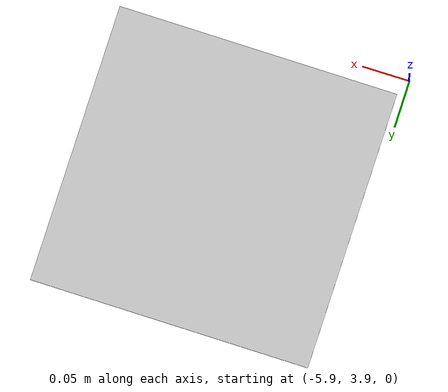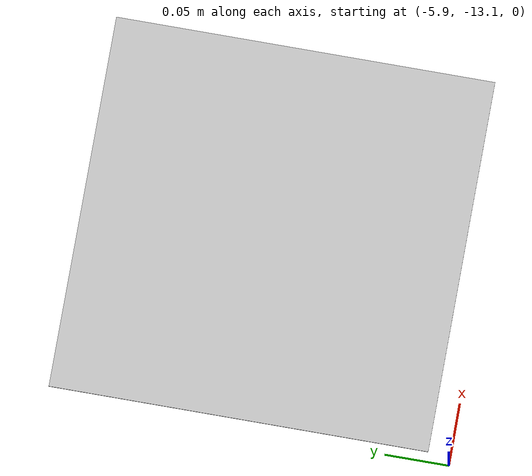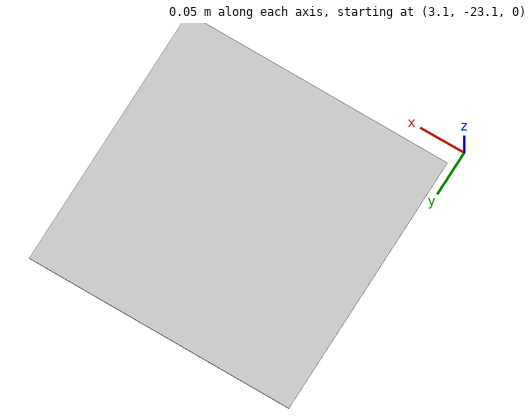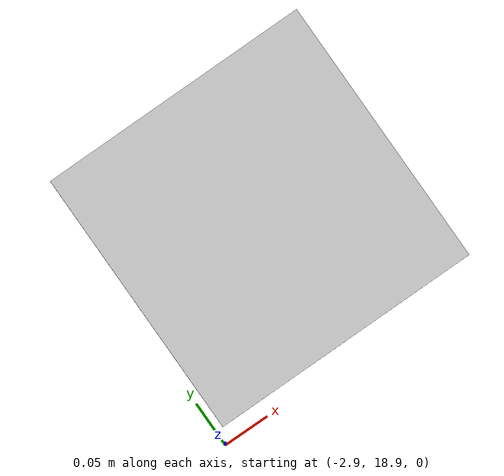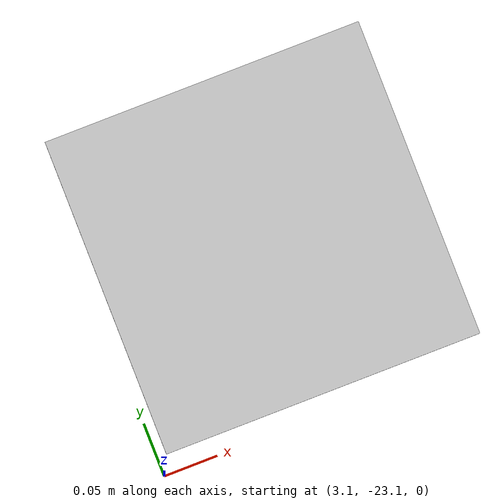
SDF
<?xml version="1.0"?>
<sdf version="1.4">
  <model name="qr_code">

   <link name="qr_code_0">
      <pose>-2.743365 19.064873 0 0 0 -1.5708</pose>
      <collision name="collision">
        <geometry>
            <box>
            <size>0.2968625 0.2968625 0.001</size>
          </box>
        </geometry>
      </collision>
      <visual name="visual">
        <geometry>
          <box>
            <size>0.2968625 0.2968625 0.001</size>
          </box>
        </geometry>
        <material>
		  <script>
            <uri>model://qr_code_dipartimento/materials/scripts/qr_code_0.material</uri>
            <uri>model://qr_code_dipartimento/materials/textures/qr_code_0.png</uri>
            <name>qr_code_0/Image</name>
          </script>
        </material>
      </visual>
    </link>

    <link name="qr_code 1">
      <pose>-5.743365 4.064873 0 0 0 -1.5708</pose>
      <collision name="collision">
        <geometry>
            <box>
            <size>0.2968625 0.2968625 0.001</size>
          </box>
        </geometry>
      </collision>
      <visual name="visual">
        <geometry>
          <box>
            <size>0.2968625 0.2968625 0.001</size>
          </box>
        </geometry>
        <material>
		  <script>
            <uri>model://qr_code_dipartimento/materials/scripts/qr_code_1.material</uri>
            <uri>model://qr_code_dipartimento/materials/textures/qr_code_1.png</uri>
            <name>qr_code_1/Image</name>
          </script>
        </material>
      </visual>
    </link>

    <link name="qr_code 2">
      <pose>-5.743365 -12.934 0 0 0 -1.5708</pose>
      <collision name="collision">
        <geometry>
            <box>
            <size>0.2968625 0.2968625 0.001</size>
          </box>
        </geometry>
      </collision>
      <visual name="visual">
        <geometry>
          <box>
            <size>0.2968625 0.2968625 0.001</size>
          </box>
        </geometry>
        <material>
		  <script>
            <uri>model://qr_code_dipartimento/materials/scripts/qr_code_2.material</uri>
            <uri>model://qr_code_dipartimento/materials/textures/qr_code_2.png</uri>
            <name>qr_code_2/Image</name>
          </script>
        </material>
      </visual>
    </link>

    <link name="qr_code_3">
      <pose>3.257 -22.934 0 0 0 -1.5708</pose>
      <collision name="collision">
        <geometry>
            <box>
            <size>0.2968625 0.2968625 0.001</size>
          </box>
        </geometry>
      </collision>
      <visual name="visual">
        <geometry>
          <box>
            <size>0.2968625 0.2968625 0.001</size>
          </box>
        </geometry>
        <material>
		  <script>
            <uri>model://qr_code_dipartimento/materials/scripts/qr_code_3.material</uri>
            <uri>model://qr_code_dipartimento/materials/textures/qr_code_3.png</uri>
            <name>qr_code_3/Image</name>
          </script>
        </material>
      </visual>
    </link>

  </model>
</sdf>
